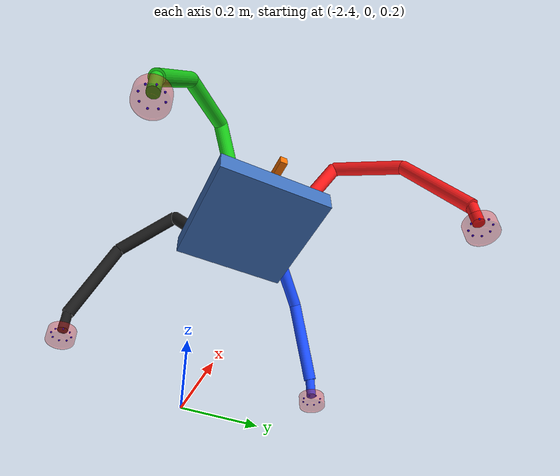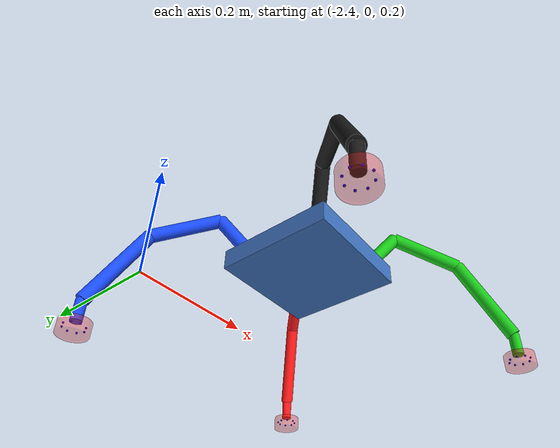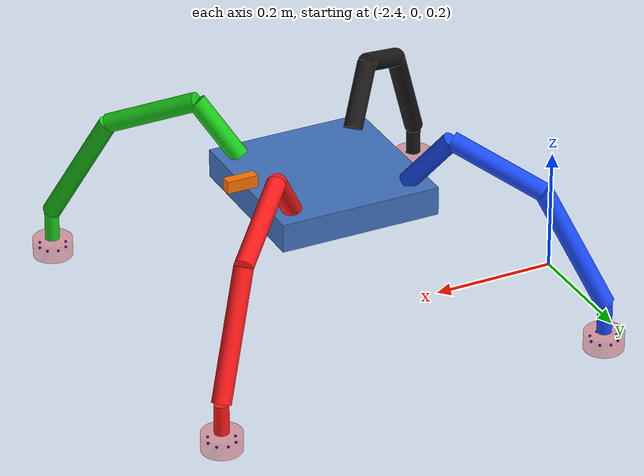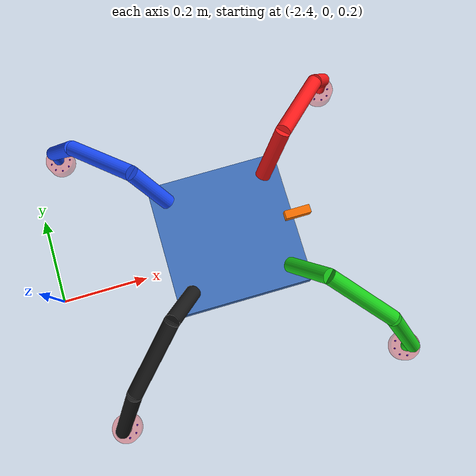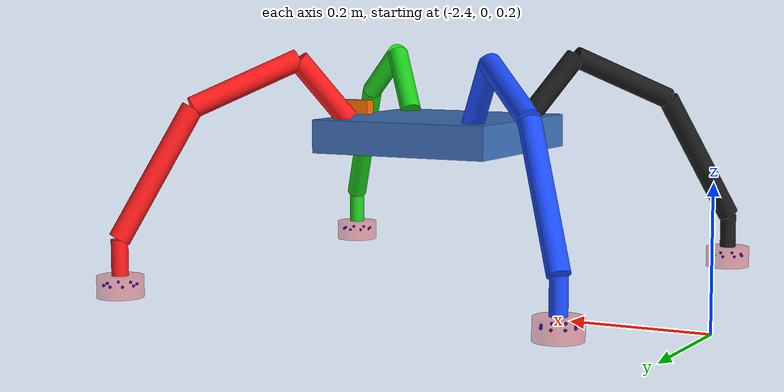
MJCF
<!-- Robot fragment — included by scene.xml -->
<!-- All positions in metres (derived from mm specs); angles in degrees.      -->
<!-- CONNECTION METHOD: body-origin-at-joint + fromto geoms                  -->
<!--   Each body origin  = joint pivot point                                  -->
<!--   Cylinder fromto="0 0 0  dx dy dz" spans joint → next joint in body    -->
<!--   local frame.  Child body pos="dx dy dz" = that same endpoint.         -->
<!-- COORDINATE CONVENTION: +X = FRONT of robot (orange indicator on +X side -->
<!--   confirms front).  +Y = left.  Corner layout:                           -->
<!--     FL (+X, +Y)  |  FR (+X, -Y)                                         -->
<!--     BL (-X, +Y)  |  BR (-X, -Y)                                         -->
<!-- JOINT AXES:                                                               -->
<!--   hip_pitch (all legs): hinge about Z axis (0 0 1), range -90..+90 deg  -->
<!--     → yaw-like swing of leg in the horizontal plane                      -->
<!--   knee / wrist: hinge about leg-diagonal axis in XY plane                -->
<!--   ee: hinge about leg-diagonal axis in YZ plane                          -->
<!-- LEG COLORS (structural cylinder geoms):                                  -->
<!--   FL = RED   (1.0 0.1 0.1 1)                                             -->
<!--   FR = GREEN (0.1 0.8 0.1 1)                                             -->
<!--   BL = BLUE  (0.1 0.3 1.0 1)                                             -->
<!--   BR = BLACK (0.1 0.1 0.1 1)                                             -->
<mujoco>

  <!-- ─── Defaults ─────────────────────────────────────────────────────────── -->
  <default>
    <!-- CF links: carbon fibre density ~1500 kg/m^3 -->
    <default class="cf_link">
      <geom type="cylinder"
            condim="3" friction="1.0 0.005 0.0001"
            solimp="0.9 0.95 0.001" solref="0.02 1"
            contype="1" conaffinity="1"
            density="1500"
            rgba="0.12 0.12 0.14 1"/>
    </default>
    <default class="visual">
      <geom type="mesh" contype="0" conaffinity="0" group="2" rgba="0.2 0.4 0.9 0.4"/>
    </default>
    <default class="collision">
      <geom group="3" rgba="0 0 0 0" condim="6" contype="1" conaffinity="1"/>
    </default>
    <!-- damping 1 Nm.s/rad, armature 0.01 kg.m^2 -->
    <joint damping="1.0" armature="0.01"/>

  </default>

  <!-- ─── Assets ───────────────────────────────────────────────────────────── -->
  <asset>
    <mesh file="1103___pp___aws_pem_215lbs__eml63mm_24.stl"/>
  </asset>

  <!-- ─── Robot Body ───────────────────────────────────────────────────────── -->
  <worldbody>

    <body name="main_frame" pos="-2.0 0 0.45">
      <freejoint name="root"/>
      <geom name="frame_geom" type="box"
            size="0.130 0.130 0.023"
            density="7800"
            contype="0" conaffinity="0"
            rgba="0.25 0.45 0.75 1"/>
      <!-- Front indicator: small orange block on +X face (front), top surface -->
      <geom name="front_indicator" type="box"
            size="0.025 0.008 0.010"
            pos="0.138 0 0.033"
            contype="0" conaffinity="0"
            rgba="1.0 0.45 0.0 1"/>

      <!-- ════════════════════════ BACK-LEFT (BLUE) ══════════════════ -->
      <body name="hip_link_BL" pos="-0.0965 0.092 0.023">
        <joint name="hip_pitch_BL" type="hinge" axis="0 0 1" range="-45 45" />
        <geom name="hip_geom_BL" type="cylinder"
              fromto="0 0 0  -0.04861 0.04861 0.08192"
              size="0.015" class="cf_link" rgba="0.1 0.3 1.0 1"/>

        <body name="knee_link_BL" pos="-0.04861 0.04861 0.08192">
          <joint name="knee_BL" type="hinge" axis="0.7071068 0.7071068 0" range="-130 130" />
          <geom name="knee_geom_BL" type="cylinder"
                fromto="0 0 0  -0.10279 0.10279 -0.06258"
                size="0.015" class="cf_link" rgba="0.1 0.3 1.0 1"/>

          <body name="wrist_link_BL" pos="-0.10279 0.10279 -0.06258">
            <joint name="wrist_BL" type="hinge" axis="0.7071068 0.7071068 0" range="-57 57" />
            <geom name="wrist_geom_BL" type="cylinder"
                  fromto="0 0 0  -0.07091 0.07091 -0.17369"
                  size="0.015" class="cf_link" rgba="0.1 0.3 1.0 1"/>

            <body name="EE_BL" pos="-0.07091 0.07091 -0.17369" quat="0.7071 0 0.7071 0">
              <joint name="ee_BL" type="hinge" axis="0 0.7071068 0.7071068" range="-90 90" />
              <joint name="ee2_BL" type="hinge" axis="0 0.7071068 -0.7071068" range="-90 90"  stiffness="1.0" damping="0.3"/>
              <geom name="ee_link_geom_BL" type="cylinder"
                    fromto="0 0 0  0.04866 0.000000 0.000000"
                    size="0.0115" class="cf_link" rgba="0.1 0.3 1.0 1"/>
              <body name="electromagnet_BL" pos="0.04874 0.000000 0.000000" quat="-0.5 0.5 0.5 0.5">
                <joint name="em_z_BL" type="hinge" axis="0 -1 0" range="-180 180"  stiffness="0.0" damping="0.3"/>
                <geom type="mesh" class="visual"    mesh="1103___pp___aws_pem_215lbs__eml63mm_24" rgba="0.9 0.1 0.1 0.35"/>
                <geom type="mesh" class="collision" mesh="1103___pp___aws_pem_215lbs__eml63mm_24" mass="0.35"/>
                <geom type="sphere" size="0.002" pos="+0.022000 +0.012500 +0.000000" contype="0" conaffinity="0" mass="1e-6" rgba="0 0 1 1"/>
                <geom type="sphere" size="0.002" pos="+0.015556 +0.012500 +0.015556" contype="0" conaffinity="0" mass="1e-6" rgba="0 0 1 1"/>
                <geom type="sphere" size="0.002" pos="+0.000000 +0.012500 +0.022000" contype="0" conaffinity="0" mass="1e-6" rgba="0 0 1 1"/>
                <geom type="sphere" size="0.002" pos="-0.015556 +0.012500 +0.015556" contype="0" conaffinity="0" mass="1e-6" rgba="0 0 1 1"/>
                <geom type="sphere" size="0.002" pos="-0.022000 +0.012500 +0.000000" contype="0" conaffinity="0" mass="1e-6" rgba="0 0 1 1"/>
                <geom type="sphere" size="0.002" pos="-0.015556 +0.012500 -0.015556" contype="0" conaffinity="0" mass="1e-6" rgba="0 0 1 1"/>
                <geom type="sphere" size="0.002" pos="+0.000000 +0.012500 -0.022000" contype="0" conaffinity="0" mass="1e-6" rgba="0 0 1 1"/>
                <geom type="sphere" size="0.002" pos="+0.015556 +0.012500 -0.015556" contype="0" conaffinity="0" mass="1e-6" rgba="0 0 1 1"/>
              </body>
            </body><!-- EE_BL -->
          </body><!-- wrist_link_BL -->
        </body><!-- knee_link_BL -->
      </body><!-- hip_link_BL -->

      <!-- ════════════════════════ FRONT-LEFT (RED) ══════════════════ -->
      <body name="hip_link_FL" pos="0.0965 0.092 0.023">
        <joint name="hip_pitch_FL" type="hinge" axis="0 0 1" range="-45 45" />
        <geom name="hip_geom_FL" type="cylinder"
              fromto="0 0 0  0.04861 0.04861 0.08192"
              size="0.015" class="cf_link" rgba="1.0 0.1 0.1 1"/>

        <body name="knee_link_FL" pos="0.04861 0.04861 0.08192">
          <joint name="knee_FL" type="hinge" axis="0.7071068 -0.7071068 0" range="-130 130" />
          <geom name="knee_geom_FL" type="cylinder"
                fromto="0 0 0  0.10279 0.10279 -0.06258"
                size="0.015" class="cf_link" rgba="1.0 0.1 0.1 1"/>

          <body name="wrist_link_FL" pos="0.10279 0.10279 -0.06258">
            <joint name="wrist_FL" type="hinge" axis="0.7071068 -0.7071068 0" range="-57 57" />
            <geom name="wrist_geom_FL" type="cylinder"
                  fromto="0 0 0  0.07091 0.07091 -0.17369"
                  size="0.015" class="cf_link" rgba="1.0 0.1 0.1 1"/>

            <body name="EE_FL" pos="0.07091 0.07091 -0.17369" quat="0.7071 0 0.7071 0">
              <joint name="ee_FL" type="hinge" axis="0 -0.7071068 0.7071068" range="-90 90" />
              <joint name="ee2_FL" type="hinge" axis="0 0.7071068 0.7071068" range="-90 90"  stiffness="1.0" damping="0.3"/>
              <geom name="ee_link_geom_FL" type="cylinder"
                    fromto="0 0 0  0.04866 0.000000 0.000000"
                    size="0.0115" class="cf_link" rgba="1.0 0.1 0.1 1"/>
              <body name="electromagnet_FL" pos="0.04874 0.000000 0.000000" quat="0.5 0.5 0.5 -0.5">
                <joint name="em_z_FL" type="hinge" axis="0 -1 0" range="-180 180"  stiffness="0.0" damping="0.3"/>
                <geom type="mesh" class="visual"    mesh="1103___pp___aws_pem_215lbs__eml63mm_24" rgba="0.9 0.1 0.1 0.35"/>
                <geom type="mesh" class="collision" mesh="1103___pp___aws_pem_215lbs__eml63mm_24" mass="0.35"/>
                <geom type="sphere" size="0.002" pos="+0.022000 +0.012500 +0.000000" contype="0" conaffinity="0" mass="1e-6" rgba="0 0 1 1"/>
                <geom type="sphere" size="0.002" pos="+0.015556 +0.012500 +0.015556" contype="0" conaffinity="0" mass="1e-6" rgba="0 0 1 1"/>
                <geom type="sphere" size="0.002" pos="+0.000000 +0.012500 +0.022000" contype="0" conaffinity="0" mass="1e-6" rgba="0 0 1 1"/>
                <geom type="sphere" size="0.002" pos="-0.015556 +0.012500 +0.015556" contype="0" conaffinity="0" mass="1e-6" rgba="0 0 1 1"/>
                <geom type="sphere" size="0.002" pos="-0.022000 +0.012500 +0.000000" contype="0" conaffinity="0" mass="1e-6" rgba="0 0 1 1"/>
                <geom type="sphere" size="0.002" pos="-0.015556 +0.012500 -0.015556" contype="0" conaffinity="0" mass="1e-6" rgba="0 0 1 1"/>
                <geom type="sphere" size="0.002" pos="+0.000000 +0.012500 -0.022000" contype="0" conaffinity="0" mass="1e-6" rgba="0 0 1 1"/>
                <geom type="sphere" size="0.002" pos="+0.015556 +0.012500 -0.015556" contype="0" conaffinity="0" mass="1e-6" rgba="0 0 1 1"/>
              </body>
            </body><!-- EE_FL -->
          </body><!-- wrist_link_FL -->
        </body><!-- knee_link_FL -->
      </body><!-- hip_link_FL -->

      <!-- ════════════════════════ BACK-RIGHT (BLACK) ════════════════ -->
      <body name="hip_link_BR" pos="-0.0965 -0.092 0.023">
        <joint name="hip_pitch_BR" type="hinge" axis="0 0 1" range="-45 45" />
        <geom name="hip_geom_BR" type="cylinder"
              fromto="0 0 0  -0.04861 -0.04861 0.08192"
              size="0.015" class="cf_link" rgba="0.1 0.1 0.1 1"/>

        <body name="knee_link_BR" pos="-0.04861 -0.04861 0.08192">
          <joint name="knee_BR" type="hinge" axis="-0.7071068 0.7071068 0" range="-130 130" />
          <geom name="knee_geom_BR" type="cylinder"
                fromto="0 0 0  -0.10279 -0.10279 -0.06258"
                size="0.015" class="cf_link" rgba="0.1 0.1 0.1 1"/>

          <body name="wrist_link_BR" pos="-0.10279 -0.10279 -0.06258">
            <joint name="wrist_BR" type="hinge" axis="-0.7071068 0.7071068 0" range="-57 57" />
            <geom name="wrist_geom_BR" type="cylinder"
                  fromto="0 0 0  -0.07091 -0.07091 -0.17369"
                  size="0.015" class="cf_link" rgba="0.1 0.1 0.1 1"/>

            <body name="EE_BR" pos="-0.07091 -0.07091 -0.17369" quat="0.7071 0 0.7071 0">
              <joint name="ee_BR" type="hinge" axis="0 0.7071068 -0.7071068" range="-90 90" />
              <joint name="ee2_BR" type="hinge" axis="0 0.7071068 0.7071068" range="-90 90"  stiffness="1.0" damping="0.3"/>
              <geom name="ee_link_geom_BR" type="cylinder"
                    fromto="0 0 0  0.04866 0.000000 0.000000"
                    size="0.0115" class="cf_link" rgba="0.1 0.1 0.1 1"/>
              <body name="electromagnet_BR" pos="0.04874 0.000000 0.000000" quat="0.5 0.5 0.5 -0.5">
                <joint name="em_z_BR" type="hinge" axis="0 -1 0" range="-180 180"  stiffness="0.0" damping="0.3"/>
                <geom type="mesh" class="visual"    mesh="1103___pp___aws_pem_215lbs__eml63mm_24" rgba="0.9 0.1 0.1 0.35"/>
                <geom type="mesh" class="collision" mesh="1103___pp___aws_pem_215lbs__eml63mm_24" mass="0.35"/>
                <geom type="sphere" size="0.002" pos="+0.022000 +0.012500 +0.000000" contype="0" conaffinity="0" mass="1e-6" rgba="0 0 1 1"/>
                <geom type="sphere" size="0.002" pos="+0.015556 +0.012500 +0.015556" contype="0" conaffinity="0" mass="1e-6" rgba="0 0 1 1"/>
                <geom type="sphere" size="0.002" pos="+0.000000 +0.012500 +0.022000" contype="0" conaffinity="0" mass="1e-6" rgba="0 0 1 1"/>
                <geom type="sphere" size="0.002" pos="-0.015556 +0.012500 +0.015556" contype="0" conaffinity="0" mass="1e-6" rgba="0 0 1 1"/>
                <geom type="sphere" size="0.002" pos="-0.022000 +0.012500 +0.000000" contype="0" conaffinity="0" mass="1e-6" rgba="0 0 1 1"/>
                <geom type="sphere" size="0.002" pos="-0.015556 +0.012500 -0.015556" contype="0" conaffinity="0" mass="1e-6" rgba="0 0 1 1"/>
                <geom type="sphere" size="0.002" pos="+0.000000 +0.012500 -0.022000" contype="0" conaffinity="0" mass="1e-6" rgba="0 0 1 1"/>
                <geom type="sphere" size="0.002" pos="+0.015556 +0.012500 -0.015556" contype="0" conaffinity="0" mass="1e-6" rgba="0 0 1 1"/>
              </body>
            </body><!-- EE_BR -->
          </body><!-- wrist_link_BR -->
        </body><!-- knee_link_BR -->
      </body><!-- hip_link_BR -->

      <!-- ════════════════════════ FRONT-RIGHT (GREEN) ═══════════════ -->
      <body name="hip_link_FR" pos="0.0965 -0.092 0.023">
        <joint name="hip_pitch_FR" type="hinge" axis="0 0 1" range="-45 45" />
        <geom name="hip_geom_FR" type="cylinder"
              fromto="0 0 0  0.04861 -0.04861 0.08192"
              size="0.015" class="cf_link" rgba="0.1 0.8 0.1 1"/>

        <body name="knee_link_FR" pos="0.04861 -0.04861 0.08192">
          <joint name="knee_FR" type="hinge" axis="-0.7071068 -0.7071068 0" range="-130 130" />
          <geom name="knee_geom_FR" type="cylinder"
                fromto="0 0 0  0.10279 -0.10279 -0.06258"
                size="0.015" class="cf_link" rgba="0.1 0.8 0.1 1"/>

          <body name="wrist_link_FR" pos="0.10279 -0.10279 -0.06258">
            <joint name="wrist_FR" type="hinge" axis="-0.7071068 -0.7071068 0" range="-57 57" />
            <geom name="wrist_geom_FR" type="cylinder"
                  fromto="0 0 0  0.07091 -0.07091 -0.17369"
                  size="0.015" class="cf_link" rgba="0.1 0.8 0.1 1"/>

            <body name="EE_FR" pos="0.07091 -0.07091 -0.17369" quat="0.7071 0 0.7071 0">
              <joint name="ee_FR" type="hinge" axis="0 -0.7071068 -0.7071068" range="-90 90" />
              <joint name="ee2_FR" type="hinge" axis="0 0.7071068 -0.7071068" range="-90 90"  stiffness="1.0" damping="0.3"/>
              <geom name="ee_link_geom_FR" type="cylinder"
                    fromto="0 0 0  0.04866 0.000000 0.000000"
                    size="0.0115" class="cf_link" rgba="0.1 0.8 0.1 1"/>
              <body name="electromagnet_FR" pos="0.04874 0.000000 0.000000" quat="-0.5 0.5 0.5 0.5">
                <joint name="em_z_FR" type="hinge" axis="0 -1 0" range="-180 180"  stiffness="0.0" damping="0.3"/>
                <geom type="mesh" class="visual"    mesh="1103___pp___aws_pem_215lbs__eml63mm_24" rgba="0.9 0.1 0.1 0.35"/>
                <geom type="mesh" class="collision" mesh="1103___pp___aws_pem_215lbs__eml63mm_24" mass="0.35"/>
                <geom type="sphere" size="0.002" pos="+0.022000 +0.012500 +0.000000" contype="0" conaffinity="0" mass="1e-6" rgba="0 0 1 1"/>
                <geom type="sphere" size="0.002" pos="+0.015556 +0.012500 +0.015556" contype="0" conaffinity="0" mass="1e-6" rgba="0 0 1 1"/>
                <geom type="sphere" size="0.002" pos="+0.000000 +0.012500 +0.022000" contype="0" conaffinity="0" mass="1e-6" rgba="0 0 1 1"/>
                <geom type="sphere" size="0.002" pos="-0.015556 +0.012500 +0.015556" contype="0" conaffinity="0" mass="1e-6" rgba="0 0 1 1"/>
                <geom type="sphere" size="0.002" pos="-0.022000 +0.012500 +0.000000" contype="0" conaffinity="0" mass="1e-6" rgba="0 0 1 1"/>
                <geom type="sphere" size="0.002" pos="-0.015556 +0.012500 -0.015556" contype="0" conaffinity="0" mass="1e-6" rgba="0 0 1 1"/>
                <geom type="sphere" size="0.002" pos="+0.000000 +0.012500 -0.022000" contype="0" conaffinity="0" mass="1e-6" rgba="0 0 1 1"/>
                <geom type="sphere" size="0.002" pos="+0.015556 +0.012500 -0.015556" contype="0" conaffinity="0" mass="1e-6" rgba="0 0 1 1"/>
              </body>
            </body><!-- EE_FR -->
          </body><!-- wrist_link_FR -->
        </body><!-- knee_link_FR -->
      </body><!-- hip_link_FR -->

    </body><!-- main_frame -->
  </worldbody>

  <!-- ─── Actuators (torque-controlled motors) ──────────────────────────────── -->
  <actuator>
    <!-- Back-Left -->
    <motor name="hip_pitch_act_BL" joint="hip_pitch_BL"  ctrlrange="-100 100"/>
    <motor name="knee_act_BL"      joint="knee_BL"       ctrlrange="-100 100"/>
    <motor name="wrist_act_BL"     joint="wrist_BL"      ctrlrange="-100 100"/>
    <!-- Front-Left -->
    <motor name="hip_pitch_act_FL" joint="hip_pitch_FL"  ctrlrange="-100 100"/>
    <motor name="knee_act_FL"      joint="knee_FL"       ctrlrange="-100 100"/>
    <motor name="wrist_act_FL"     joint="wrist_FL"      ctrlrange="-100 100"/>
    <!-- Back-Right -->
    <motor name="hip_pitch_act_BR" joint="hip_pitch_BR"  ctrlrange="-100 100"/>
    <motor name="knee_act_BR"      joint="knee_BR"       ctrlrange="-100 100"/>
    <motor name="wrist_act_BR"     joint="wrist_BR"      ctrlrange="-100 100"/>
    <!-- Front-Right -->
    <motor name="hip_pitch_act_FR" joint="hip_pitch_FR"  ctrlrange="-100 100"/>
    <motor name="knee_act_FR"      joint="knee_FR"       ctrlrange="-100 100"/>
    <motor name="wrist_act_FR"     joint="wrist_FR"      ctrlrange="-100 100"/>
    <!-- EE joints -->
    <motor name="ee_act_BL"        joint="ee_BL"         ctrlrange="-100 100"/>
    <motor name="ee_act_FL"        joint="ee_FL"         ctrlrange="-100 100"/>
    <motor name="ee_act_BR"        joint="ee_BR"         ctrlrange="-100 100"/>
    <motor name="ee_act_FR"        joint="ee_FR"         ctrlrange="-100 100"/>
  </actuator>

</mujoco>
